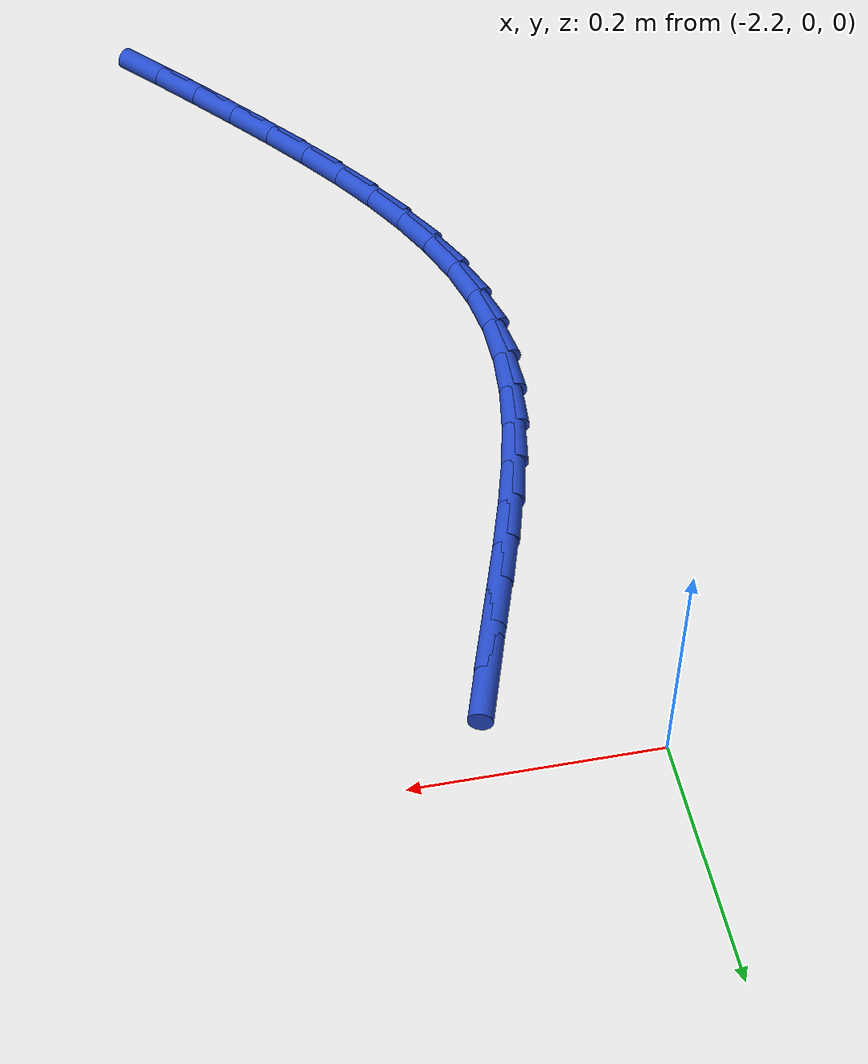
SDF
<sdf version="1.6">
 <world name="default">
  <model name="ground_plane">
   <static>1</static>
   <link name="link">
    <collision name="collision">
     <geometry><plane><normal>0 0 1</normal><size>100 100</size></plane></geometry>
     <surface><friction><ode><mu>100</mu><mu2>50</mu2></ode></friction></surface>
    </collision>
    <visual name="visual">
     <cast_shadows>0</cast_shadows>
     <geometry><plane><normal>0 0 1</normal><size>100 100</size></plane></geometry>
     <material>
      <script><uri>file://media/materials/scripts/gazebo.material</uri><name>Gazebo/WhiteGlow</name></script>
     </material>
    </visual>
   </link>
  </model>
  <model name="line">
   <link name="link_79">
    <pose>-2.0785330271226776 -0.08082620430346575 0.01 0 1.57 1.242616350140656</pose>
    <collision name="collision">
     <geometry><cylinder><radius>0.01</radius><length>0.08</length></cylinder></geometry>
    </collision>
    <visual name="visual">
     <material>
      <script><name>Gazebo/Blue</name><uri>file://media/materials/scripts/gazebo.material</uri></script>
     </material>
     <geometry><cylinder><radius>0.01</radius><length>0.08</length></cylinder></geometry>
    </visual>
   </link>
   <link name="link_80">
    <pose>-2.093180589983726 -0.12384494778815033 0.01 0 1.57 1.2331052285146529</pose>
    <collision name="collision">
     <geometry><cylinder><radius>0.01</radius><length>0.08</length></cylinder></geometry>
    </collision>
    <visual name="visual">
     <material>
      <script><name>Gazebo/Blue</name><uri>file://media/materials/scripts/gazebo.material</uri></script>
     </material>
     <geometry><cylinder><radius>0.01</radius><length>0.08</length></cylinder></geometry>
    </visual>
   </link>
   <link name="link_81">
    <pose>-2.1081811672445436 -0.16656445248400398 0.01 0 1.57 1.2368168985269707</pose>
    <collision name="collision">
     <geometry><cylinder><radius>0.01</radius><length>0.08</length></cylinder></geometry>
    </collision>
    <visual name="visual">
     <material>
      <script><name>Gazebo/Blue</name><uri>file://media/materials/scripts/gazebo.material</uri></script>
     </material>
     <geometry><cylinder><radius>0.01</radius><length>0.08</length></cylinder></geometry>
    </visual>
   </link>
   <link name="link_82">
    <pose>-2.122885838039303 -0.20894380168432408 0.01 0 1.57 1.2541886434721246</pose>
    <collision name="collision">
     <geometry><cylinder><radius>0.01</radius><length>0.08</length></cylinder></geometry>
    </collision>
    <visual name="visual">
     <material>
      <script><name>Gazebo/Blue</name><uri>file://media/materials/scripts/gazebo.material</uri></script>
     </material>
     <geometry><cylinder><radius>0.01</radius><length>0.08</length></cylinder></geometry>
    </visual>
   </link>
   <link name="link_83">
    <pose>-2.136645681502179 -0.2509420786824056 0.01 0 1.57 1.2861229238296188</pose>
    <collision name="collision">
     <geometry><cylinder><radius>0.01</radius><length>0.08</length></cylinder></geometry>
    </collision>
    <visual name="visual">
     <material>
      <script><name>Gazebo/Blue</name><uri>file://media/materials/scripts/gazebo.material</uri></script>
     </material>
     <geometry><cylinder><radius>0.01</radius><length>0.08</length></cylinder></geometry>
    </visual>
   </link>
   <link name="link_84">
    <pose>-2.148811776767345 -0.29251836677154586 0.01 0 1.57 1.3339589131383451</pose>
    <collision name="collision">
     <geometry><cylinder><radius>0.01</radius><length>0.08</length></cylinder></geometry>
    </collision>
    <visual name="visual">
     <material>
      <script><name>Gazebo/Blue</name><uri>file://media/materials/scripts/gazebo.material</uri></script>
     </material>
     <geometry><cylinder><radius>0.01</radius><length>0.08</length></cylinder></geometry>
    </visual>
   </link>
   <link name="link_85">
    <pose>-2.158735202968976 -0.3336317492450415 0.01 0 1.57 1.3993392941659488</pose>
    <collision name="collision">
     <geometry><cylinder><radius>0.01</radius><length>0.08</length></cylinder></geometry>
    </collision>
    <visual name="visual">
     <material>
      <script><name>Gazebo/Blue</name><uri>file://media/materials/scripts/gazebo.material</uri></script>
     </material>
     <geometry><cylinder><radius>0.01</radius><length>0.08</length></cylinder></geometry>
    </visual>
   </link>
   <link name="link_86">
    <pose>-2.1657670392412456 -0.37424130939618916 0.01 0 1.57 1.4838739831688272</pose>
    <collision name="collision">
     <geometry><cylinder><radius>0.01</radius><length>0.08</length></cylinder></geometry>
    </collision>
    <visual name="visual">
     <material>
      <script><name>Gazebo/Blue</name><uri>file://media/materials/scripts/gazebo.material</uri></script>
     </material>
     <geometry><cylinder><radius>0.01</radius><length>0.08</length></cylinder></geometry>
    </visual>
   </link>
   <link name="link_87">
    <pose>-2.1692583647183286 -0.414306130518286 0.01 0 1.57 -1.5531152682339173</pose>
    <collision name="collision">
     <geometry><cylinder><radius>0.01</radius><length>0.08</length></cylinder></geometry>
    </collision>
    <visual name="visual">
     <material>
      <script><name>Gazebo/Blue</name><uri>file://media/materials/scripts/gazebo.material</uri></script>
     </material>
     <geometry><cylinder><radius>0.01</radius><length>0.08</length></cylinder></geometry>
    </visual>
   </link>
   <link name="link_88">
    <pose>-2.1685602585343986 -0.45378529590462724 0.01 0 1.57 -1.4298964709109696</pose>
    <collision name="collision">
     <geometry><cylinder><radius>0.01</radius><length>0.08</length></cylinder></geometry>
    </collision>
    <visual name="visual">
     <material>
      <script><name>Gazebo/Blue</name><uri>file://media/materials/scripts/gazebo.material</uri></script>
     </material>
     <geometry><cylinder><radius>0.01</radius><length>0.08</length></cylinder></geometry>
    </visual>
   </link>
   <link name="link_89">
    <pose>-2.1630490296938403 -0.4926406190200019 0.01 0 1.57 -1.3056783547586628</pose>
    <collision name="collision">
     <geometry><cylinder><radius>0.01</radius><length>0.08</length></cylinder></geometry>
    </collision>
    <visual name="visual">
     <material>
      <script><name>Gazebo/Blue</name><uri>file://media/materials/scripts/gazebo.material</uri></script>
     </material>
     <geometry><cylinder><radius>0.01</radius><length>0.08</length></cylinder></geometry>
    </visual>
   </link>
   <link name="link_90">
    <pose>-2.15266269492015 -0.5308946967731359 0.01 0 1.57 -1.1976722595013078</pose>
    <collision name="collision">
     <geometry><cylinder><radius>0.01</radius><length>0.08</length></cylinder></geometry>
    </collision>
    <visual name="visual">
     <material>
      <script><name>Gazebo/Blue</name><uri>file://media/materials/scripts/gazebo.material</uri></script>
     </material>
     <geometry><cylinder><radius>0.01</radius><length>0.08</length></cylinder></geometry>
    </visual>
   </link>
   <link name="link_91">
    <pose>-2.137890846699043 -0.5686298131186673 0.01 0 1.57 -1.1072754564608445</pose>
    <collision name="collision">
     <geometry><cylinder><radius>0.01</radius><length>0.08</length></cylinder></geometry>
    </collision>
    <visual name="visual">
     <material>
      <script><name>Gazebo/Blue</name><uri>file://media/materials/scripts/gazebo.material</uri></script>
     </material>
     <geometry><cylinder><radius>0.01</radius><length>0.08</length></cylinder></geometry>
    </visual>
   </link>
   <link name="link_92">
    <pose>-2.1192462807845898 -0.6059307628803461 0.01 0 1.57 -1.0336957529816306</pose>
    <collision name="collision">
     <geometry><cylinder><radius>0.01</radius><length>0.08</length></cylinder></geometry>
    </collision>
    <visual name="visual">
     <material>
      <script><name>Gazebo/Blue</name><uri>file://media/materials/scripts/gazebo.material</uri></script>
     </material>
     <geometry><cylinder><radius>0.01</radius><length>0.08</length></cylinder></geometry>
    </visual>
   </link>
   <link name="link_93">
    <pose>-2.097241792930862 -0.6428823408819202 0.01 0 1.57 -0.9754027166687536</pose>
    <collision name="collision">
     <geometry><cylinder><radius>0.01</radius><length>0.08</length></cylinder></geometry>
    </collision>
    <visual name="visual">
     <material>
      <script><name>Gazebo/Blue</name><uri>file://media/materials/scripts/gazebo.material</uri></script>
     </material>
     <geometry><cylinder><radius>0.01</radius><length>0.08</length></cylinder></geometry>
    </visual>
   </link>
   <link name="link_94">
    <pose>-2.072390178891933 -0.6795693419471394 0.01 0 1.57 -0.93071315023118</pose>
    <collision name="collision">
     <geometry><cylinder><radius>0.01</radius><length>0.08</length></cylinder></geometry>
    </collision>
    <visual name="visual">
     <material>
      <script><name>Gazebo/Blue</name><uri>file://media/materials/scripts/gazebo.material</uri></script>
     </material>
     <geometry><cylinder><radius>0.01</radius><length>0.08</length></cylinder></geometry>
    </visual>
   </link>
   <link name="link_95">
    <pose>-2.0452042344218726 -0.7160765608997526 0.01 0 1.57 -0.8981068718952289</pose>
    <collision name="collision">
     <geometry><cylinder><radius>0.01</radius><length>0.08</length></cylinder></geometry>
    </collision>
    <visual name="visual">
     <material>
      <script><name>Gazebo/Blue</name><uri>file://media/materials/scripts/gazebo.material</uri></script>
     </material>
     <geometry><cylinder><radius>0.01</radius><length>0.08</length></cylinder></geometry>
    </visual>
   </link>
   <link name="link_96">
    <pose>-2.016196755274753 -0.7524887925635103 0.01 0 1.57 -0.8763631576401569</pose>
    <collision name="collision">
     <geometry><cylinder><radius>0.01</radius><length>0.08</length></cylinder></geometry>
    </collision>
    <visual name="visual">
     <material>
      <script><name>Gazebo/Blue</name><uri>file://media/materials/scripts/gazebo.material</uri></script>
     </material>
     <geometry><cylinder><radius>0.01</radius><length>0.08</length></cylinder></geometry>
    </visual>
   </link>
   <link name="link_97">
    <pose>-1.9858805372046457 -0.7888908317621599 0.01 0 1.57 -0.8642456295677706</pose>
    <collision name="collision">
     <geometry><cylinder><radius>0.01</radius><length>0.08</length></cylinder></geometry>
    </collision>
    <visual name="visual">
     <material>
      <script><name>Gazebo/Blue</name><uri>file://media/materials/scripts/gazebo.material</uri></script>
     </material>
     <geometry><cylinder><radius>0.01</radius><length>0.08</length></cylinder></geometry>
    </visual>
   </link>
   <link name="link_98">
    <pose>-1.954755642963879 -0.82535611146774 0.01 0 1.57 -0.8541080736413473</pose>
    <collision name="collision">
     <geometry><cylinder><radius>0.01</radius><length>0.08</length></cylinder></geometry>
    </collision>
    <visual name="visual">
     <material>
      <script><name>Gazebo/Blue</name><uri>file://media/materials/scripts/gazebo.material</uri></script>
     </material>
     <geometry><cylinder><radius>0.01</radius><length>0.08</length></cylinder></geometry>
    </visual>
   </link>
   <link name="link_99">
    <pose>-1.9230661169633112 -0.8617296155803584 0.01 0 1.57 -0.8391584420049605</pose>
    <collision name="collision">
     <geometry><cylinder><radius>0.01</radius><length>0.08</length></cylinder></geometry>
    </collision>
    <visual name="visual">
     <material>
      <script><name>Gazebo/Blue</name><uri>file://media/materials/scripts/gazebo.material</uri></script>
     </material>
     <geometry><cylinder><radius>0.01</radius><length>0.08</length></cylinder></geometry>
    </visual>
   </link>
  </model>
 </world>
</sdf>
